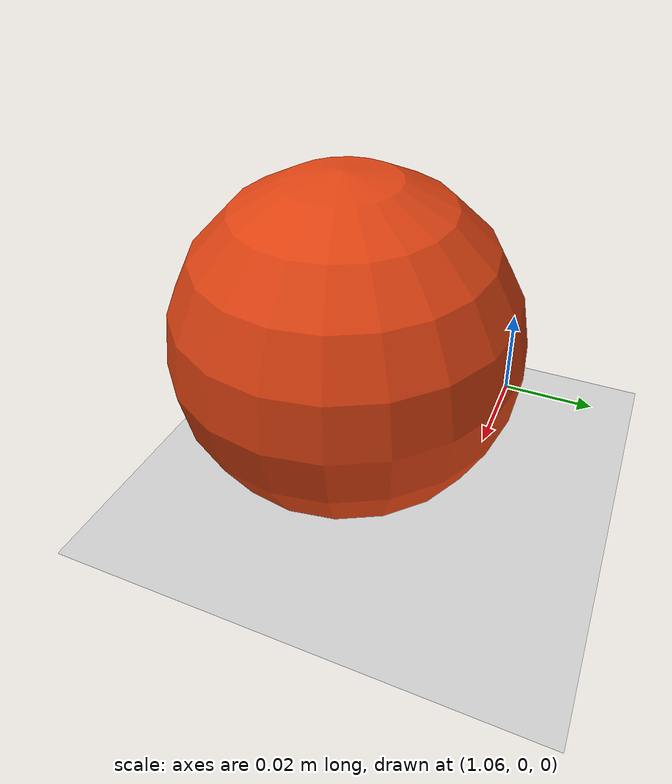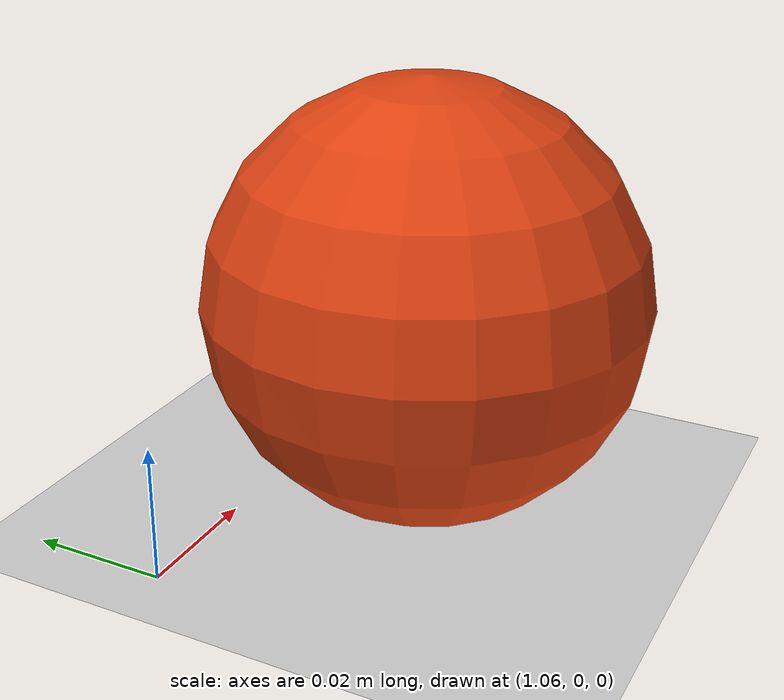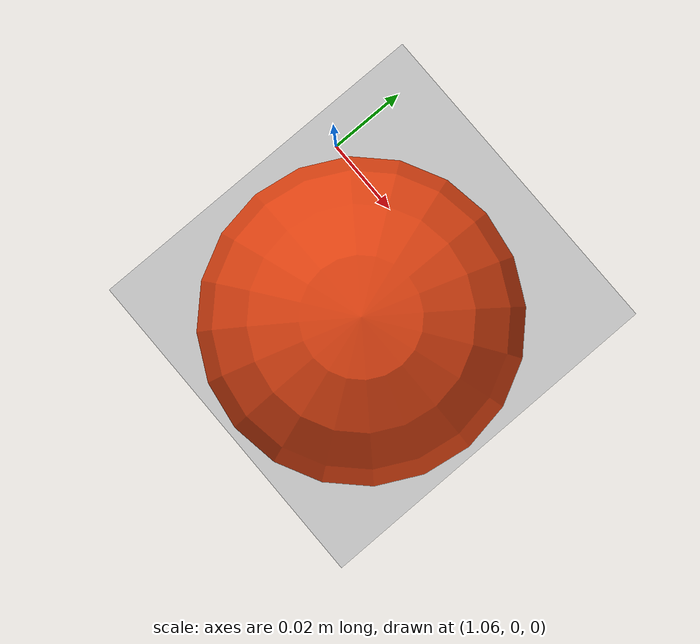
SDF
<sdf version='1.12'>
  <world name='empty'>
    <physics name='1ms' type='ignored'>
      <max_step_size>0.001</max_step_size>
      <real_time_factor>1</real_time_factor>
      <real_time_update_rate>1000</real_time_update_rate>
    </physics>
    <plugin name='gz::sim::systems::Physics' filename='gz-sim-physics-system'/>
    <plugin name='gz::sim::systems::UserCommands' filename='gz-sim-user-commands-system'/>
    <plugin name='gz::sim::systems::SceneBroadcaster' filename='gz-sim-scene-broadcaster-system'/>
    <plugin name='gz::sim::systems::Sensors' filename='gz-sim-sensors-system'>
      <render_engine>ogre</render_engine>
    </plugin>
    <plugin name='gz::sim::systems::Contact' filename='gz-sim-contact-system'/>
    <gravity>0 0 -9.8000000000000007</gravity>
    <magnetic_field>5.5644999999999998e-06 2.2875799999999999e-05 -4.2388400000000002e-05</magnetic_field>
    <atmosphere type='adiabatic'/>
    <scene>
      <ambient>0.400000006 0.400000006 0.400000006 1</ambient>
      <background>0.699999988 0.699999988 0.699999988 1</background>
      <shadows>true</shadows>
    </scene>
    <model name='ground_plane'>
      <static>true</static>
      <link name='link'>
        <collision name='collision'>
          <geometry>
            <plane>
              <normal>0 0 1</normal>
              <size>100 100</size>
            </plane>
          </geometry>
          <surface>
            <friction>
              <ode/>
            </friction>
            <bounce/>
            <contact/>
          </surface>
        </collision>
        <visual name='visual'>
          <geometry>
            <plane>
              <normal>0 0 1</normal>
              <size>100 100</size>
            </plane>
          </geometry>
          <material>
            <ambient>0.800000012 0.800000012 0.800000012 1</ambient>
            <diffuse>0.800000012 0.800000012 0.800000012 1</diffuse>
            <specular>0.800000012 0.800000012 0.800000012 1</specular>
          </material>
        </visual>
        <pose>0 0 0 0 0 0</pose>
        <inertial>
          <pose>0 0 0 0 0 0</pose>
          <mass>1</mass>
          <inertia>
            <ixx>1</ixx>
            <ixy>0</ixy>
            <ixz>0</ixz>
            <iyy>1</iyy>
            <iyz>0</iyz>
            <izz>1</izz>
          </inertia>
        </inertial>
        <enable_wind>false</enable_wind>
      </link>
      <pose>0 0 0 0 0 0</pose>
      <self_collide>false</self_collide>
    </model>
    <model name='RoboCup SPL Ball'>
      <static>false</static>
      <link name='ball'>
        <inertial>
          <mass>0.0055999999999999999</mass>
          <inertia>
            <ixx>2.3700000000000002e-06</ixx>
            <iyy>2.3700000000000002e-06</iyy>
            <izz>2.3700000000000002e-06</izz>
            <ixy>0</ixy>
            <ixz>0</ixz>
            <iyz>0</iyz>
          </inertia>
          <pose>0 0 0 0 0 0</pose>
        </inertial>
        <collision name='collision'>
          <geometry>
            <sphere>
              <radius>0.032500000000000001</radius>
            </sphere>
          </geometry>
          <surface>
            <friction>
              <ode/>
            </friction>
            <bounce/>
            <contact/>
          </surface>
        </collision>
        <visual name='visual'>
          <geometry>
            <sphere>
              <radius>0.032500000000000001</radius>
            </sphere>
          </geometry>
          <material>
            <ambient>0.870000005 0.25999999 0.0700000003 1</ambient>
            <diffuse>0.870000005 0.25999999 0.0700000003 1</diffuse>
            <specular>0.870000005 0.25999999 0.0700000003 1</specular>
          </material>
        </visual>
        <pose>0 0 0 0 0 0</pose>
        <enable_wind>false</enable_wind>
      </link>
      <pose>1.0967400074005127 -0.02311830036342144 0.032499145285908089 0 0 0</pose>
      <self_collide>false</self_collide>
    </model>
    <light name='sun' type='directional'>
      <pose>0 0 10 0 0 0</pose>
      <cast_shadows>true</cast_shadows>
      <intensity>1</intensity>
      <direction>-0.5 0.10000000000000001 -0.90000000000000002</direction>
      <diffuse>0.800000012 0.800000012 0.800000012 1</diffuse>
      <specular>0.200000003 0.200000003 0.200000003 1</specular>
      <attenuation>
        <range>1000</range>
        <linear>0.01</linear>
        <constant>0.90000000000000002</constant>
        <quadratic>0.001</quadratic>
      </attenuation>
      <spot>
        <inner_angle>0</inner_angle>
        <outer_angle>0</outer_angle>
        <falloff>0</falloff>
      </spot>
    </light>
  </world>
</sdf>
